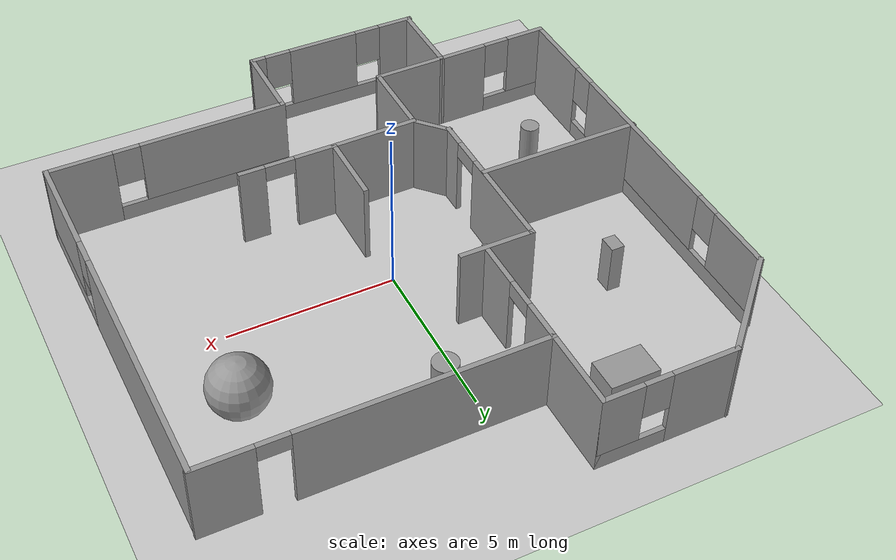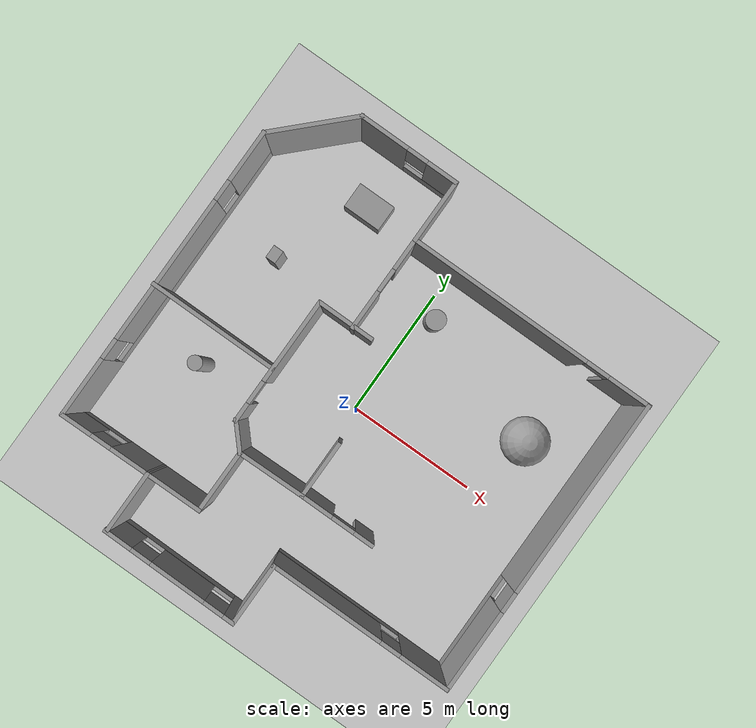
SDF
<sdf version="1.6">
 <world name="my_map">
  <light name="sun" type="directional">
   <pose>0 0 10 0 -0 0</pose>
   <diffuse>0.8 0.8 0.8 1</diffuse>
   <specular>0.2 0.2 0.2 1</specular>
   <attenuation>
    <range>1000</range>
    <constant>0.9</constant>
    <linear>0.01</linear>
    <quadratic>0.001</quadratic>
   </attenuation>
   <direction>-0.5 0.1 -0.9</direction>
  </light>
  <model name="ground_plane">
   <static>1</static>
   <link name="link">
    <collision name="collision">
     <geometry><plane><normal>0 0 1</normal><size>100 100</size></plane></geometry>
     <surface>
      <contact><collide_bitmask>65535</collide_bitmask></contact>
      <friction><ode><mu>100</mu><mu2>50</mu2></ode></friction>
     </surface>
    </collision>
    <visual name="visual">
     <cast_shadows>0</cast_shadows>
     <geometry><plane><normal>0 0 1</normal><size>100 100</size></plane></geometry>
     <material>
      <script><uri>file://media/materials/scripts/gazebo.material</uri><name>Gazebo/Grey</name></script>
     </material>
    </visual>
   </link>
  </model>
  <model name="my_map">
   <link name="Wall_0">
    <pose>-3.05328 -0.191303 0 0 -0 -1.5708</pose>
    <visual name="Wall_0_Visual_0">
     <pose>-0.840724 0 1.25 0 -0 0</pose>
     <geometry><box><size>3.31855 0.15 2.5</size></box></geometry>
     <material>
      <script><uri>file://media/materials/scripts/gazebo.material</uri><name>Gazebo/Grey</name></script>
      <ambient>1 1 1 1</ambient>
     </material>
     <meta><layer>0</layer></meta>
    </visual>
    <collision name="Wall_0_Collision_0">
     <geometry><box><size>3.31855 0.15 2.5</size></box></geometry>
     <pose>-0.840724 0 1.25 0 -0 0</pose>
    </collision>
    <visual name="Wall_0_Visual_1">
     <pose>2.10928 0 1.25 0 -0 0</pose>
     <geometry><box><size>0.781449 0.15 2.5</size></box></geometry>
     <material>
      <script><uri>file://media/materials/scripts/gazebo.material</uri><name>Gazebo/Grey</name></script>
      <ambient>1 1 1 1</ambient>
     </material>
     <meta><layer>0</layer></meta>
    </visual>
    <collision name="Wall_0_Collision_1">
     <geometry><box><size>0.781449 0.15 2.5</size></box></geometry>
     <pose>2.10928 0 1.25 0 -0 0</pose>
    </collision>
    <visual name="Wall_0_Visual_2">
     <pose>1.26855 0 2.25 0 -0 0</pose>
     <geometry><box><size>0.9 0.15 0.5</size></box></geometry>
     <material>
      <script><uri>file://media/materials/scripts/gazebo.material</uri><name>Gazebo/Grey</name></script>
      <ambient>1 1 1 1</ambient>
     </material>
     <meta><layer>0</layer></meta>
    </visual>
    <collision name="Wall_0_Collision_2">
     <geometry><box><size>0.9 0.15 0.5</size></box></geometry>
     <pose>1.26855 0 2.25 0 -0 0</pose>
    </collision>
   </link>
   <link name="Wall_1">
    <collision name="Wall_1_Collision">
     <geometry><box><size>1.26244 0.15 2.5</size></box></geometry>
     <pose>0 0 1.25 0 -0 0</pose>
    </collision>
    <visual name="Wall_1_Visual">
     <pose>0 0 1.25 0 -0 0</pose>
     <geometry><box><size>1.26244 0.15 2.5</size></box></geometry>
     <material>
      <script><uri>file://media/materials/scripts/gazebo.material</uri><name>Gazebo/Grey</name></script>
      <ambient>1 1 1 1</ambient>
     </material>
     <meta><layer>0</layer></meta>
    </visual>
    <pose>-2.67895 -3.00459 0 0 -0 -0.832576</pose>
   </link>
   <link name="Wall_10">
    <pose>4.3597 -5.82465 0 0 -0 3.14159</pose>
    <visual name="Wall_10_Visual_0">
     <pose>-2.62447 0 1.25 0 -0 0</pose>
     <geometry><box><size>2.00105 0.15 2.5</size></box></geometry>
     <material>
      <script><uri>file://media/materials/scripts/gazebo.material</uri><name>Gazebo/Grey</name></script>
      <ambient>1 1 1 1</ambient>
     </material>
     <meta><layer>0</layer></meta>
    </visual>
    <collision name="Wall_10_Collision_0">
     <geometry><box><size>2.00105 0.15 2.5</size></box></geometry>
     <pose>-2.62447 0 1.25 0 -0 0</pose>
    </collision>
    <visual name="Wall_10_Visual_1">
     <pose>1.00053 0 0.25 0 -0 0</pose>
     <geometry><box><size>5.24895 0.15 0.5</size></box></geometry>
     <material>
      <script><uri>file://media/materials/scripts/gazebo.material</uri><name>Gazebo/Grey</name></script>
      <ambient>1 1 1 1</ambient>
     </material>
     <meta><layer>0</layer></meta>
    </visual>
    <collision name="Wall_10_Collision_1">
     <geometry><box><size>5.24895 0.15 0.5</size></box></geometry>
     <pose>1.00053 0 0.25 0 -0 0</pose>
    </collision>
    <visual name="Wall_10_Visual_2">
     <pose>1.40053 0 1.5 0 -0 0</pose>
     <geometry><box><size>4.44895 0.15 2</size></box></geometry>
     <material>
      <script><uri>file://media/materials/scripts/gazebo.material</uri><name>Gazebo/Grey</name></script>
      <ambient>1 1 1 1</ambient>
     </material>
     <meta><layer>0</layer></meta>
    </visual>
    <collision name="Wall_10_Collision_2">
     <geometry><box><size>4.44895 0.15 2</size></box></geometry>
     <pose>1.40053 0 1.5 0 -0 0</pose>
    </collision>
    <visual name="Wall_10_Visual_3">
     <pose>-1.22395 0 1.9 0 -0 0</pose>
     <geometry><box><size>0.8 0.15 1.2</size></box></geometry>
     <material>
      <script><uri>file://media/materials/scripts/gazebo.material</uri><name>Gazebo/Grey</name></script>
      <ambient>1 1 1 1</ambient>
     </material>
     <meta><layer>0</layer></meta>
    </visual>
    <collision name="Wall_10_Collision_3">
     <geometry><box><size>0.8 0.15 1.2</size></box></geometry>
     <pose>-1.22395 0 1.9 0 -0 0</pose>
    </collision>
   </link>
   <link name="Wall_11">
    <collision name="Wall_11_Collision">
     <geometry><box><size>2.5 0.15 2.5</size></box></geometry>
     <pose>0 0 1.25 0 -0 0</pose>
    </collision>
    <visual name="Wall_11_Visual">
     <pose>0 0 1.25 0 -0 0</pose>
     <geometry><box><size>2.5 0.15 2.5</size></box></geometry>
     <material>
      <script><uri>file://media/materials/scripts/gazebo.material</uri><name>Gazebo/Grey</name></script>
      <ambient>1 1 1 1</ambient>
     </material>
     <meta><layer>0</layer></meta>
    </visual>
    <pose>0.809703 -6.99965 0 0 -0 -1.5708</pose>
   </link>
   <link name="Wall_12">
    <pose>-1.82121 -8.15442 0 0 -0 3.1339</pose>
    <visual name="Wall_12_Visual_0">
     <pose>-2.46389 0 1.25 0 -0 0</pose>
     <geometry><box><size>0.484202 0.15 2.5</size></box></geometry>
     <material>
      <script><uri>file://media/materials/scripts/gazebo.material</uri><name>Gazebo/Grey</name></script>
      <ambient>1 1 1 1</ambient>
     </material>
     <meta><layer>0</layer></meta>
    </visual>
    <collision name="Wall_12_Collision_0">
     <geometry><box><size>0.484202 0.15 2.5</size></box></geometry>
     <pose>-2.46389 0 1.25 0 -0 0</pose>
    </collision>
    <visual name="Wall_12_Visual_1">
     <pose>0.242101 0 0.25 0 -0 0</pose>
     <geometry><box><size>4.92778 0.15 0.5</size></box></geometry>
     <material>
      <script><uri>file://media/materials/scripts/gazebo.material</uri><name>Gazebo/Grey</name></script>
      <ambient>1 1 1 1</ambient>
     </material>
     <meta><layer>0</layer></meta>
    </visual>
    <collision name="Wall_12_Collision_1">
     <geometry><box><size>4.92778 0.15 0.5</size></box></geometry>
     <pose>0.242101 0 0.25 0 -0 0</pose>
    </collision>
    <visual name="Wall_12_Visual_2">
     <pose>-0.324975 0 1.5 0 -0 0</pose>
     <geometry><box><size>2.19362 0.15 2</size></box></geometry>
     <material>
      <script><uri>file://media/materials/scripts/gazebo.material</uri><name>Gazebo/Grey</name></script>
      <ambient>1 1 1 1</ambient>
     </material>
     <meta><layer>0</layer></meta>
    </visual>
    <collision name="Wall_12_Collision_2">
     <geometry><box><size>2.19362 0.15 2</size></box></geometry>
     <pose>-0.324975 0 1.5 0 -0 0</pose>
    </collision>
    <visual name="Wall_12_Visual_3">
     <pose>2.13891 0 1.5 0 -0 0</pose>
     <geometry><box><size>1.13415 0.15 2</size></box></geometry>
     <material>
      <script><uri>file://media/materials/scripts/gazebo.material</uri><name>Gazebo/Grey</name></script>
      <ambient>1 1 1 1</ambient>
     </material>
     <meta><layer>0</layer></meta>
    </visual>
    <collision name="Wall_12_Collision_3">
     <geometry><box><size>1.13415 0.15 2</size></box></geometry>
     <pose>2.13891 0 1.5 0 -0 0</pose>
    </collision>
    <visual name="Wall_12_Visual_4">
     <pose>-1.82179 0 1.9 0 -0 0</pose>
     <geometry><box><size>0.8 0.15 1.2</size></box></geometry>
     <material>
      <script><uri>file://media/materials/scripts/gazebo.material</uri><name>Gazebo/Grey</name></script>
      <ambient>1 1 1 1</ambient>
     </material>
     <meta><layer>0</layer></meta>
    </visual>
    <collision name="Wall_12_Collision_4">
     <geometry><box><size>0.8 0.15 1.2</size></box></geometry>
     <pose>-1.82179 0 1.9 0 -0 0</pose>
    </collision>
    <visual name="Wall_12_Visual_5">
     <pose>1.17184 0 1.9 0 -0 0</pose>
     <geometry><box><size>0.8 0.15 1.2</size></box></geometry>
     <material>
      <script><uri>file://media/materials/scripts/gazebo.material</uri><name>Gazebo/Grey</name></script>
      <ambient>1 1 1 1</ambient>
     </material>
     <meta><layer>0</layer></meta>
    </visual>
    <collision name="Wall_12_Collision_5">
     <geometry><box><size>0.8 0.15 1.2</size></box></geometry>
     <pose>1.17184 0 1.9 0 -0 0</pose>
    </collision>
   </link>
   <link name="Wall_13">
    <collision name="Wall_13_Collision">
     <geometry><box><size>2.5 0.15 2.5</size></box></geometry>
     <pose>0 0 1.25 0 -0 0</pose>
    </collision>
    <visual name="Wall_13_Visual">
     <pose>0 0 1.25 0 -0 0</pose>
     <geometry><box><size>2.5 0.15 2.5</size></box></geometry>
     <material>
      <script><uri>file://media/materials/scripts/gazebo.material</uri><name>Gazebo/Grey</name></script>
      <ambient>1 1 1 1</ambient>
     </material>
     <meta><layer>0</layer></meta>
    </visual>
    <pose>-4.41166 -6.95919 0 0 -0 1.5708</pose>
   </link>
   <link name="Wall_14">
    <pose>-6.15098 -5.80442 0 0 -0 -3.12996</pose>
    <visual name="Wall_14_Visual_0">
     <pose>-1.02837 0 1.25 0 -0 0</pose>
     <geometry><box><size>1.57214 0.15 2.5</size></box></geometry>
     <material>
      <script><uri>file://media/materials/scripts/gazebo.material</uri><name>Gazebo/Grey</name></script>
      <ambient>1 1 1 1</ambient>
     </material>
     <meta><layer>0</layer></meta>
    </visual>
    <collision name="Wall_14_Collision_0">
     <geometry><box><size>1.57214 0.15 2.5</size></box></geometry>
     <pose>-1.02837 0 1.25 0 -0 0</pose>
    </collision>
    <visual name="Wall_14_Visual_1">
     <pose>0.786068 0 0.25 0 -0 0</pose>
     <geometry><box><size>2.05673 0.15 0.5</size></box></geometry>
     <material>
      <script><uri>file://media/materials/scripts/gazebo.material</uri><name>Gazebo/Grey</name></script>
      <ambient>1 1 1 1</ambient>
     </material>
     <meta><layer>0</layer></meta>
    </visual>
    <collision name="Wall_14_Collision_1">
     <geometry><box><size>2.05673 0.15 0.5</size></box></geometry>
     <pose>0.786068 0 0.25 0 -0 0</pose>
    </collision>
    <visual name="Wall_14_Visual_2">
     <pose>1.18607 0 1.5 0 -0 0</pose>
     <geometry><box><size>1.25673 0.15 2</size></box></geometry>
     <material>
      <script><uri>file://media/materials/scripts/gazebo.material</uri><name>Gazebo/Grey</name></script>
      <ambient>1 1 1 1</ambient>
     </material>
     <meta><layer>0</layer></meta>
    </visual>
    <collision name="Wall_14_Collision_2">
     <geometry><box><size>1.25673 0.15 2</size></box></geometry>
     <pose>1.18607 0 1.5 0 -0 0</pose>
    </collision>
    <visual name="Wall_14_Visual_3">
     <pose>0.157702 0 1.9 0 -0 0</pose>
     <geometry><box><size>0.8 0.15 1.2</size></box></geometry>
     <material>
      <script><uri>file://media/materials/scripts/gazebo.material</uri><name>Gazebo/Grey</name></script>
      <ambient>1 1 1 1</ambient>
     </material>
     <meta><layer>0</layer></meta>
    </visual>
    <collision name="Wall_14_Collision_3">
     <geometry><box><size>0.8 0.15 1.2</size></box></geometry>
     <pose>0.157702 0 1.9 0 -0 0</pose>
    </collision>
   </link>
   <link name="Wall_18">
    <pose>-7.8903 -0.02465 0 0 -0 1.5708</pose>
    <visual name="Wall_18_Visual_0">
     <pose>-4.68444 0 1.25 0 -0 0</pose>
     <geometry><box><size>2.38112 0.15 2.5</size></box></geometry>
     <material>
      <script><uri>file://media/materials/scripts/gazebo.material</uri><name>Gazebo/Grey</name></script>
      <ambient>1 1 1 1</ambient>
     </material>
     <meta><layer>0</layer></meta>
    </visual>
    <collision name="Wall_18_Collision_0">
     <geometry><box><size>2.38112 0.15 2.5</size></box></geometry>
     <pose>-4.68444 0 1.25 0 -0 0</pose>
    </collision>
    <visual name="Wall_18_Visual_1">
     <pose>1.19056 0 0.25 0 -0 0</pose>
     <geometry><box><size>9.36888 0.15 0.5</size></box></geometry>
     <material>
      <script><uri>file://media/materials/scripts/gazebo.material</uri><name>Gazebo/Grey</name></script>
      <ambient>1 1 1 1</ambient>
     </material>
     <meta><layer>0</layer></meta>
    </visual>
    <collision name="Wall_18_Collision_1">
     <geometry><box><size>9.36888 0.15 0.5</size></box></geometry>
     <pose>1.19056 0 0.25 0 -0 0</pose>
    </collision>
    <visual name="Wall_18_Visual_2">
     <pose>0.162791 0 1.5 0 -0 0</pose>
     <geometry><box><size>5.71335 0.15 2</size></box></geometry>
     <material>
      <script><uri>file://media/materials/scripts/gazebo.material</uri><name>Gazebo/Grey</name></script>
      <ambient>1 1 1 1</ambient>
     </material>
     <meta><layer>0</layer></meta>
    </visual>
    <collision name="Wall_18_Collision_2">
     <geometry><box><size>5.71335 0.15 2</size></box></geometry>
     <pose>0.162791 0 1.5 0 -0 0</pose>
    </collision>
    <visual name="Wall_18_Visual_3">
     <pose>4.84723 0 1.5 0 -0 0</pose>
     <geometry><box><size>2.05553 0.15 2</size></box></geometry>
     <material>
      <script><uri>file://media/materials/scripts/gazebo.material</uri><name>Gazebo/Grey</name></script>
      <ambient>1 1 1 1</ambient>
     </material>
     <meta><layer>0</layer></meta>
    </visual>
    <collision name="Wall_18_Collision_3">
     <geometry><box><size>2.05553 0.15 2</size></box></geometry>
     <pose>4.84723 0 1.5 0 -0 0</pose>
    </collision>
    <visual name="Wall_18_Visual_4">
     <pose>-3.09388 0 1.9 0 -0 0</pose>
     <geometry><box><size>0.8 0.15 1.2</size></box></geometry>
     <material>
      <script><uri>file://media/materials/scripts/gazebo.material</uri><name>Gazebo/Grey</name></script>
      <ambient>1 1 1 1</ambient>
     </material>
     <meta><layer>0</layer></meta>
    </visual>
    <collision name="Wall_18_Collision_4">
     <geometry><box><size>0.8 0.15 1.2</size></box></geometry>
     <pose>-3.09388 0 1.9 0 -0 0</pose>
    </collision>
    <visual name="Wall_18_Visual_5">
     <pose>3.41947 0 1.9 0 -0 0</pose>
     <geometry><box><size>0.8 0.15 1.2</size></box></geometry>
     <material>
      <script><uri>file://media/materials/scripts/gazebo.material</uri><name>Gazebo/Grey</name></script>
      <ambient>1 1 1 1</ambient>
     </material>
     <meta><layer>0</layer></meta>
    </visual>
    <collision name="Wall_18_Collision_5">
     <geometry><box><size>0.8 0.15 1.2</size></box></geometry>
     <pose>3.41947 0 1.9 0 -0 0</pose>
    </collision>
   </link>
   <link name="Wall_19">
    <collision name="Wall_19_Collision">
     <geometry><box><size>3.5 0.15 2.5</size></box></geometry>
     <pose>0 0 1.25 0 -0 0</pose>
    </collision>
    <visual name="Wall_19_Visual">
     <pose>0 0 1.25 0 -0 0</pose>
     <geometry><box><size>3.5 0.15 2.5</size></box></geometry>
     <material>
      <script><uri>file://media/materials/scripts/gazebo.material</uri><name>Gazebo/Grey</name></script>
      <ambient>1 1 1 1</ambient>
     </material>
     <meta><layer>0</layer></meta>
    </visual>
    <pose>-6.70589 6.95975 0 0 -0 0.785398</pose>
   </link>
   <link name="Wall_2">
    <collision name="Wall_2_Collision">
     <geometry><box><size>2.67668 0.15 2.5</size></box></geometry>
     <pose>0 0 1.25 0 -0 0</pose>
    </collision>
    <visual name="Wall_2_Visual">
     <pose>0 0 1.25 0 -0 0</pose>
     <geometry><box><size>2.67668 0.15 2.5</size></box></geometry>
     <material>
      <script><uri>file://media/materials/scripts/gazebo.material</uri><name>Gazebo/Grey</name></script>
      <ambient>1 1 1 1</ambient>
     </material>
     <meta><layer>0</layer></meta>
    </visual>
    <pose>-1.04145 -3.39578 0 0 -0 0.016012</pose>
   </link>
   <link name="Wall_20">
    <pose>-3.59649 8.14416 0 0 -0 0</pose>
    <visual name="Wall_20_Visual_0">
     <pose>-1.01959 0 1.25 0 -0 0</pose>
     <geometry><box><size>1.96083 0.15 2.5</size></box></geometry>
     <material>
      <script><uri>file://media/materials/scripts/gazebo.material</uri><name>Gazebo/Grey</name></script>
      <ambient>1 1 1 1</ambient>
     </material>
     <meta><layer>0</layer></meta>
    </visual>
    <collision name="Wall_20_Collision_0">
     <geometry><box><size>1.96083 0.15 2.5</size></box></geometry>
     <pose>-1.01959 0 1.25 0 -0 0</pose>
    </collision>
    <visual name="Wall_20_Visual_1">
     <pose>0.980412 0 0.25 0 -0 0</pose>
     <geometry><box><size>2.03918 0.15 0.5</size></box></geometry>
     <material>
      <script><uri>file://media/materials/scripts/gazebo.material</uri><name>Gazebo/Grey</name></script>
      <ambient>1 1 1 1</ambient>
     </material>
     <meta><layer>0</layer></meta>
    </visual>
    <collision name="Wall_20_Collision_1">
     <geometry><box><size>2.03918 0.15 0.5</size></box></geometry>
     <pose>0.980412 0 0.25 0 -0 0</pose>
    </collision>
    <visual name="Wall_20_Visual_2">
     <pose>1.38041 0 1.5 0 -0 0</pose>
     <geometry><box><size>1.23917 0.15 2</size></box></geometry>
     <material>
      <script><uri>file://media/materials/scripts/gazebo.material</uri><name>Gazebo/Grey</name></script>
      <ambient>1 1 1 1</ambient>
     </material>
     <meta><layer>0</layer></meta>
    </visual>
    <collision name="Wall_20_Collision_2">
     <geometry><box><size>1.23917 0.15 2</size></box></geometry>
     <pose>1.38041 0 1.5 0 -0 0</pose>
    </collision>
    <visual name="Wall_20_Visual_3">
     <pose>0.360825 0 1.9 0 -0 0</pose>
     <geometry><box><size>0.8 0.15 1.2</size></box></geometry>
     <material>
      <script><uri>file://media/materials/scripts/gazebo.material</uri><name>Gazebo/Grey</name></script>
      <ambient>1 1 1 1</ambient>
     </material>
     <meta><layer>0</layer></meta>
    </visual>
    <collision name="Wall_20_Collision_3">
     <geometry><box><size>0.8 0.15 1.2</size></box></geometry>
     <pose>0.360825 0 1.9 0 -0 0</pose>
    </collision>
   </link>
   <link name="Wall_21">
    <collision name="Wall_21_Collision">
     <geometry><box><size>2.5 0.15 2.5</size></box></geometry>
     <pose>0 0 1.25 0 -0 0</pose>
    </collision>
    <visual name="Wall_21_Visual">
     <pose>0 0 1.25 0 -0 0</pose>
     <geometry><box><size>2.5 0.15 2.5</size></box></geometry>
     <material>
      <script><uri>file://media/materials/scripts/gazebo.material</uri><name>Gazebo/Grey</name></script>
      <ambient>1 1 1 1</ambient>
     </material>
     <meta><layer>0</layer></meta>
    </visual>
    <pose>-1.67149 6.96916 0 0 -0 -1.5708</pose>
   </link>
   <link name="Wall_22">
    <pose>3.12851 5.79416 0 0 -0 0</pose>
    <visual name="Wall_22_Visual_0">
     <pose>-1.31356 0 1.25 0 -0 0</pose>
     <geometry><box><size>7.12287 0.15 2.5</size></box></geometry>
     <material>
      <script><uri>file://media/materials/scripts/gazebo.material</uri><name>Gazebo/Grey</name></script>
      <ambient>1 1 1 1</ambient>
     </material>
     <meta><layer>0</layer></meta>
    </visual>
    <collision name="Wall_22_Collision_0">
     <geometry><box><size>7.12287 0.15 2.5</size></box></geometry>
     <pose>-1.31356 0 1.25 0 -0 0</pose>
    </collision>
    <visual name="Wall_22_Visual_1">
     <pose>4.01144 0 1.25 0 -0 0</pose>
     <geometry><box><size>1.72713 0.15 2.5</size></box></geometry>
     <material>
      <script><uri>file://media/materials/scripts/gazebo.material</uri><name>Gazebo/Grey</name></script>
      <ambient>1 1 1 1</ambient>
     </material>
     <meta><layer>0</layer></meta>
    </visual>
    <collision name="Wall_22_Collision_1">
     <geometry><box><size>1.72713 0.15 2.5</size></box></geometry>
     <pose>4.01144 0 1.25 0 -0 0</pose>
    </collision>
    <visual name="Wall_22_Visual_2">
     <pose>2.69787 0 2.25 0 -0 0</pose>
     <geometry><box><size>0.9 0.15 0.5</size></box></geometry>
     <material>
      <script><uri>file://media/materials/scripts/gazebo.material</uri><name>Gazebo/Grey</name></script>
      <ambient>1 1 1 1</ambient>
     </material>
     <meta><layer>0</layer></meta>
    </visual>
    <collision name="Wall_22_Collision_2">
     <geometry><box><size>0.9 0.15 0.5</size></box></geometry>
     <pose>2.69787 0 2.25 0 -0 0</pose>
    </collision>
   </link>
   <link name="Wall_3">
    <collision name="Wall_3_Collision">
     <geometry><box><size>2.25 0.15 2.5</size></box></geometry>
     <pose>0 0 1.25 0 -0 0</pose>
    </collision>
    <visual name="Wall_3_Visual">
     <pose>0 0 1.25 0 -0 0</pose>
     <geometry><box><size>2.25 0.15 2.5</size></box></geometry>
     <material>
      <script><uri>file://media/materials/scripts/gazebo.material</uri><name>Gazebo/Grey</name></script>
      <ambient>1 1 1 1</ambient>
     </material>
     <meta><layer>0</layer></meta>
    </visual>
    <pose>0.221725 -2.32556 0 0 -0 1.5708</pose>
   </link>
   <link name="Wall_31">
    <collision name="Wall_31_Collision">
     <geometry><box><size>5 0.15 2.5</size></box></geometry>
     <pose>0 0 1.25 0 -0 0</pose>
    </collision>
    <visual name="Wall_31_Visual">
     <pose>0 0 1.25 0 -0 0</pose>
     <geometry><box><size>5 0.15 2.5</size></box></geometry>
     <material>
      <script><uri>file://media/materials/scripts/gazebo.material</uri><name>Gazebo/Grey</name></script>
      <ambient>1 1 1 1</ambient>
     </material>
     <meta><layer>0</layer></meta>
    </visual>
    <pose>-5.50351 -0.48892 0 0 -0 0</pose>
   </link>
   <link name="Wall_39">
    <collision name="Wall_39_Collision">
     <geometry><box><size>2.5 0.15 2.5</size></box></geometry>
     <pose>0 0 1.25 0 -0 0</pose>
    </collision>
    <visual name="Wall_39_Visual">
     <pose>0 0 1.25 0 -0 0</pose>
     <geometry><box><size>2.5 0.15 2.5</size></box></geometry>
     <material>
      <script><uri>file://media/materials/scripts/gazebo.material</uri><name>Gazebo/Grey</name></script>
      <ambient>1 1 1 1</ambient>
     </material>
     <meta><layer>0</layer></meta>
    </visual>
    <pose>-2.30463 -4.59101 0 0 -0 -1.5708</pose>
   </link>
   <link name="Wall_40">
    <collision name="Wall_40_Collision">
     <geometry><box><size>2.25711 0.15 2.5</size></box></geometry>
     <pose>0 0 1.25 0 -0 0</pose>
    </collision>
    <visual name="Wall_40_Visual">
     <pose>0 0 1.25 0 -0 0</pose>
     <geometry><box><size>2.25711 0.15 2.5</size></box></geometry>
     <material>
      <script><uri>file://media/materials/scripts/gazebo.material</uri><name>Gazebo/Grey</name></script>
      <ambient>1 1 1 1</ambient>
     </material>
     <meta><layer>0</layer></meta>
    </visual>
    <pose>-3.35815 -5.7751 0 0 -0 -3.13296</pose>
   </link>
   <link name="Wall_42">
    <pose>-1.67149 3.99416 0 0 -0 -1.5708</pose>
    <visual name="Wall_42_Visual_0">
     <pose>-1.22693 0 1.25 0 -0 0</pose>
     <geometry><box><size>1.29614 0.15 2.5</size></box></geometry>
     <material>
      <script><uri>file://media/materials/scripts/gazebo.material</uri><name>Gazebo/Grey</name></script>
      <ambient>1 1 1 1</ambient>
     </material>
     <meta><layer>0</layer></meta>
    </visual>
    <collision name="Wall_42_Collision_0">
     <geometry><box><size>1.29614 0.15 2.5</size></box></geometry>
     <pose>-1.22693 0 1.25 0 -0 0</pose>
    </collision>
    <visual name="Wall_42_Visual_1">
     <pose>1.09807 0 1.25 0 -0 0</pose>
     <geometry><box><size>1.55386 0.15 2.5</size></box></geometry>
     <material>
      <script><uri>file://media/materials/scripts/gazebo.material</uri><name>Gazebo/Grey</name></script>
      <ambient>1 1 1 1</ambient>
     </material>
     <meta><layer>0</layer></meta>
    </visual>
    <collision name="Wall_42_Collision_1">
     <geometry><box><size>1.55386 0.15 2.5</size></box></geometry>
     <pose>1.09807 0 1.25 0 -0 0</pose>
    </collision>
    <visual name="Wall_42_Visual_2">
     <pose>-0.128858 0 2.25 0 -0 0</pose>
     <geometry><box><size>0.9 0.15 0.5</size></box></geometry>
     <material>
      <script><uri>file://media/materials/scripts/gazebo.material</uri><name>Gazebo/Grey</name></script>
      <ambient>1 1 1 1</ambient>
     </material>
     <meta><layer>0</layer></meta>
    </visual>
    <collision name="Wall_42_Collision_2">
     <geometry><box><size>0.9 0.15 0.5</size></box></geometry>
     <pose>-0.128858 0 2.25 0 -0 0</pose>
    </collision>
   </link>
   <link name="Wall_47">
    <pose>1.64672 -3.37555 0 0 -0 0</pose>
    <visual name="Wall_47_Visual_0">
     <pose>-0.847266 0 1.25 0 -0 0</pose>
     <geometry><box><size>1.30547 0.15 2.5</size></box></geometry>
     <material>
      <script><uri>file://media/materials/scripts/gazebo.material</uri><name>Gazebo/Grey</name></script>
      <ambient>1 1 1 1</ambient>
     </material>
     <meta><layer>0</layer></meta>
    </visual>
    <collision name="Wall_47_Collision_0">
     <geometry><box><size>1.30547 0.15 2.5</size></box></geometry>
     <pose>-0.847266 0 1.25 0 -0 0</pose>
    </collision>
    <visual name="Wall_47_Visual_1">
     <pose>1.10273 0 1.25 0 -0 0</pose>
     <geometry><box><size>0.794531 0.15 2.5</size></box></geometry>
     <material>
      <script><uri>file://media/materials/scripts/gazebo.material</uri><name>Gazebo/Grey</name></script>
      <ambient>1 1 1 1</ambient>
     </material>
     <meta><layer>0</layer></meta>
    </visual>
    <collision name="Wall_47_Collision_1">
     <geometry><box><size>0.794531 0.15 2.5</size></box></geometry>
     <pose>1.10273 0 1.25 0 -0 0</pose>
    </collision>
    <visual name="Wall_47_Visual_2">
     <pose>0.255469 0 2.25 0 -0 0</pose>
     <geometry><box><size>0.9 0.15 0.5</size></box></geometry>
     <material>
      <script><uri>file://media/materials/scripts/gazebo.material</uri><name>Gazebo/Grey</name></script>
      <ambient>1 1 1 1</ambient>
     </material>
     <meta><layer>0</layer></meta>
    </visual>
    <collision name="Wall_47_Collision_2">
     <geometry><box><size>0.9 0.15 0.5</size></box></geometry>
     <pose>0.255469 0 2.25 0 -0 0</pose>
    </collision>
   </link>
   <link name="Wall_7">
    <collision name="Wall_7_Collision">
     <geometry><box><size>2.25 0.15 2.5</size></box></geometry>
     <pose>0 0 1.25 0 -0 0</pose>
    </collision>
    <visual name="Wall_7_Visual">
     <pose>0 0 1.25 0 -0 0</pose>
     <geometry><box><size>2.25 0.15 2.5</size></box></geometry>
     <material>
      <script><uri>file://media/materials/scripts/gazebo.material</uri><name>Gazebo/Grey</name></script>
      <ambient>1 1 1 1</ambient>
     </material>
     <meta><layer>0</layer></meta>
    </visual>
    <pose>-2.00327 2.2337 0 0 -0 0</pose>
   </link>
   <link name="Wall_9">
    <pose>7.9097 -0.02465 0 0 -0 -1.5708</pose>
    <visual name="Wall_9_Visual_0">
     <pose>-2.01534 0 1.25 0 -0 0</pose>
     <geometry><box><size>7.71932 0.15 2.5</size></box></geometry>
     <material>
      <script><uri>file://media/materials/scripts/gazebo.material</uri><name>Gazebo/Grey</name></script>
      <ambient>1 1 1 1</ambient>
     </material>
     <meta><layer>0</layer></meta>
    </visual>
    <collision name="Wall_9_Collision_0">
     <geometry><box><size>7.71932 0.15 2.5</size></box></geometry>
     <pose>-2.01534 0 1.25 0 -0 0</pose>
    </collision>
    <visual name="Wall_9_Visual_1">
     <pose>3.85966 0 0.25 0 -0 0</pose>
     <geometry><box><size>4.03068 0.15 0.5</size></box></geometry>
     <material>
      <script><uri>file://media/materials/scripts/gazebo.material</uri><name>Gazebo/Grey</name></script>
      <ambient>1 1 1 1</ambient>
     </material>
     <meta><layer>0</layer></meta>
    </visual>
    <collision name="Wall_9_Collision_1">
     <geometry><box><size>4.03068 0.15 0.5</size></box></geometry>
     <pose>3.85966 0 0.25 0 -0 0</pose>
    </collision>
    <visual name="Wall_9_Visual_2">
     <pose>4.25966 0 1.5 0 -0 0</pose>
     <geometry><box><size>3.23068 0.15 2</size></box></geometry>
     <material>
      <script><uri>file://media/materials/scripts/gazebo.material</uri><name>Gazebo/Grey</name></script>
      <ambient>1 1 1 1</ambient>
     </material>
     <meta><layer>0</layer></meta>
    </visual>
    <collision name="Wall_9_Collision_2">
     <geometry><box><size>3.23068 0.15 2</size></box></geometry>
     <pose>4.25966 0 1.5 0 -0 0</pose>
    </collision>
    <visual name="Wall_9_Visual_3">
     <pose>2.24432 0 1.9 0 -0 0</pose>
     <geometry><box><size>0.8 0.15 1.2</size></box></geometry>
     <material>
      <script><uri>file://media/materials/scripts/gazebo.material</uri><name>Gazebo/Grey</name></script>
      <ambient>1 1 1 1</ambient>
     </material>
     <meta><layer>0</layer></meta>
    </visual>
    <collision name="Wall_9_Collision_3">
     <geometry><box><size>0.8 0.15 1.2</size></box></geometry>
     <pose>2.24432 0 1.9 0 -0 0</pose>
    </collision>
   </link>
   <static>1</static>
  </model>
  <gravity>0 0 -9.8</gravity>
  <magnetic_field>6e-06 2.3e-05 -4.2e-05</magnetic_field>
  <atmosphere type="adiabatic"/>
  <physics name="default_physics" default="0" type="ode">
   <max_step_size>0.001</max_step_size>
   <real_time_factor>1</real_time_factor>
   <real_time_update_rate>1000</real_time_update_rate>
  </physics>
  <scene><ambient>0.4 0.4 0.4 1</ambient><background>0.7 0.7 0.7 1</background><shadows>1</shadows></scene>
  <audio><device>default</device></audio>
  <spherical_coordinates>
   <surface_model>EARTH_WGS84</surface_model>
   <latitude_deg>0</latitude_deg>
   <longitude_deg>0</longitude_deg>
   <elevation>0</elevation>
   <heading_deg>0</heading_deg>
  </spherical_coordinates>
  <model name="unit_sphere">
   <pose>5.55308 2.53783 0.88822 0 -0 0</pose>
   <link name="link">
    <inertial>
     <mass>1</mass>
     <inertia><ixx>0.1</ixx><ixy>0</ixy><ixz>0</ixz><iyy>0.1</iyy><iyz>0</iyz><izz>0.1</izz></inertia>
    </inertial>
    <collision name="collision"><geometry><sphere><radius>0.88822</radius></sphere></geometry></collision>
    <visual name="visual">
     <geometry><sphere><radius>0.88822</radius></sphere></geometry>
     <material>
      <script><name>Gazebo/Grey</name><uri>file://media/materials/scripts/gazebo.material</uri></script>
     </material>
    </visual>
   </link>
  </model>
  <model name="unit_cylinder">
   <pose>0.498099 4.19431 0.499992 -1e-06 1e-06 0</pose>
   <link name="link">
    <inertial>
     <mass>1</mass>
     <inertia><ixx>0.145833</ixx><ixy>0</ixy><ixz>0</ixz><iyy>0.145833</iyy><iyz>0</iyz><izz>0.125</izz></inertia>
    </inertial>
    <collision name="collision">
     <geometry><cylinder><radius>0.381524</radius><length>1</length></cylinder></geometry>
    </collision>
    <visual name="visual">
     <geometry><cylinder><radius>0.381524</radius><length>1</length></cylinder></geometry>
     <material>
      <script><name>Gazebo/Grey</name><uri>file://media/materials/scripts/gazebo.material</uri></script>
     </material>
    </visual>
   </link>
  </model>
  <model name="unit_box">
   <pose>-3.7666 6.14206 0.351211 0 -0 0</pose>
   <link name="link">
    <inertial>
     <mass>1</mass>
     <inertia>
      <ixx>0.166667</ixx>
      <ixy>0</ixy>
      <ixz>0</ixz>
      <iyy>0.166667</iyy>
      <iyz>0</iyz>
      <izz>0.166667</izz>
     </inertia>
    </inertial>
    <collision name="collision"><geometry><box><size>1.49014 1 0.702423</size></box></geometry></collision>
    <visual name="visual">
     <geometry><box><size>1.49014 1 0.702423</size></box></geometry>
     <material>
      <script><name>Gazebo/Grey</name><uri>file://media/materials/scripts/gazebo.material</uri></script>
     </material>
    </visual>
   </link>
  </model>
  <model name="unit_box_0">
   <pose>-5.38644 2.73186 0.776924 2e-06 -2e-06 0.000409</pose>
   <link name="link">
    <inertial>
     <mass>1</mass>
     <inertia>
      <ixx>0.166667</ixx>
      <ixy>0</ixy>
      <ixz>0</ixz>
      <iyy>0.166667</iyy>
      <iyz>0</iyz>
      <izz>0.166667</izz>
     </inertia>
    </inertial>
    <collision name="collision"><geometry><box><size>0.392317 0.508977 1.55385</size></box></geometry></collision>
    <visual name="visual">
     <geometry><box><size>0.392317 0.508977 1.55385</size></box></geometry>
     <material>
      <script><name>Gazebo/Grey</name><uri>file://media/materials/scripts/gazebo.material</uri></script>
     </material>
    </visual>
   </link>
  </model>
  <model name="unit_cylinder_0">
   <pose>-5.29674 -1.84469 1.197 -0 -0 -3.4e-05</pose>
   <link name="link">
    <inertial>
     <mass>1</mass>
     <inertia><ixx>0.145833</ixx><ixy>0</ixy><ixz>0</ixz><iyy>0.145833</iyy><iyz>0</iyz><izz>0.125</izz></inertia>
    </inertial>
    <collision name="collision">
     <geometry><cylinder><radius>0.26764</radius><length>2.39403</length></cylinder></geometry>
    </collision>
    <visual name="visual">
     <geometry><cylinder><radius>0.26764</radius><length>2.39403</length></cylinder></geometry>
     <material>
      <script><name>Gazebo/Grey</name><uri>file://media/materials/scripts/gazebo.material</uri></script>
     </material>
    </visual>
   </link>
  </model>
 </world>
</sdf>
